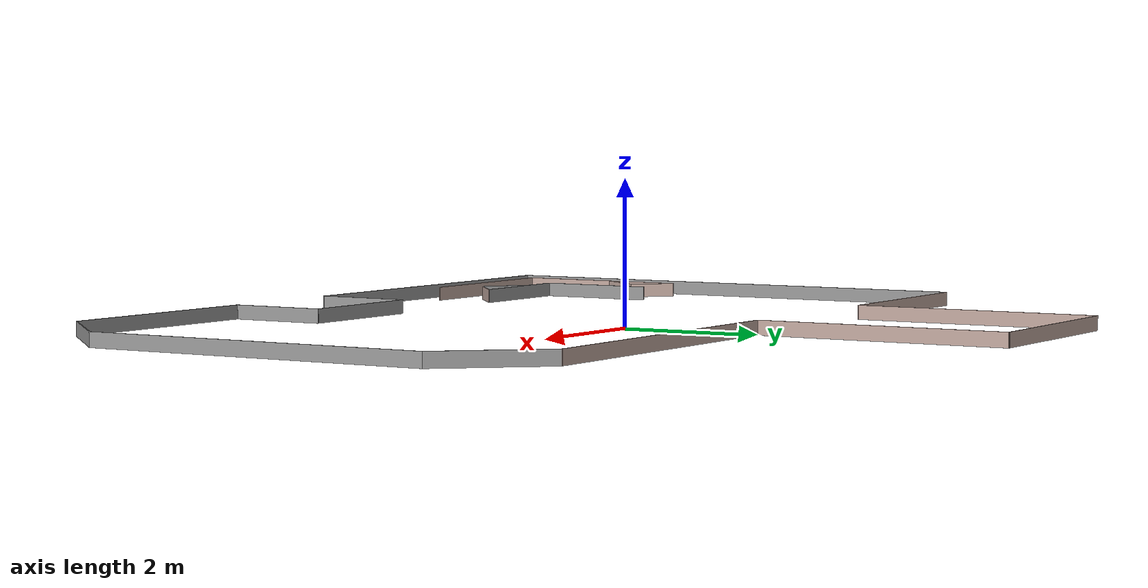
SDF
<?xml version='1.0'?>
<sdf version='1.7'>
  <model name='MR_wall'>
    <pose>-0.048968 0.048968 0 0 -0 0</pose>
    <link name='Wall_0'>
      <collision name='Wall_0_Collision'>
        <geometry>
          <box>
            <size>4.81 0.01 0.2</size>
          </box>
        </geometry>
        <pose>0 0 0.1 0 -0 0</pose>
      </collision>
      <visual name='Wall_0_Visual'>
        <pose>0 0 0.1 0 -0 0</pose>
        <geometry>
          <box>
            <size>4.81 0.01 0.2</size>
          </box>
        </geometry>
        <material>
          <script>
            <uri>file://media/materials/scripts/gazebo.material</uri>
            <name>Gazebo/Grey</name>
          </script>
          <ambient>0.760784 0.662745 0.627451 1</ambient>
        </material>
        <meta>
          <layer>0</layer>
        </meta>
      </visual>
      <pose>2.44897 1.95103 0 0 -0 0</pose>
    </link>
    <link name='Wall_10'>
      <collision name='Wall_10_Collision'>
        <geometry>
          <box>
            <size>7.41 0.01 0.2</size>
          </box>
        </geometry>
        <pose>0 0 0.1 0 -0 0</pose>
      </collision>
      <visual name='Wall_10_Visual'>
        <pose>0 0 0.1 0 -0 0</pose>
        <geometry>
          <box>
            <size>7.41 0.01 0.2</size>
          </box>
        </geometry>
        <material>
          <script>
            <uri>file://media/materials/scripts/gazebo.material</uri>
            <name>Gazebo/Grey</name>
          </script>
          <ambient>1 1 1 1</ambient>
        </material>
        <meta>
          <layer>0</layer>
        </meta>
      </visual>
      <pose>-5.95103 -1.74897 0 0 -0 -1.5708</pose>
    </link>
    <link name='Wall_12'>
      <collision name='Wall_12_Collision'>
        <geometry>
          <box>
            <size>5.51 0.01 0.2</size>
          </box>
        </geometry>
        <pose>0 0 0.1 0 -0 0</pose>
      </collision>
      <visual name='Wall_12_Visual'>
        <pose>0 0 0.1 0 -0 0</pose>
        <geometry>
          <box>
            <size>5.51 0.01 0.2</size>
          </box>
        </geometry>
        <material>
          <script>
            <uri>file://media/materials/scripts/gazebo.material</uri>
            <name>Gazebo/Grey</name>
          </script>
          <ambient>1 1 1 1</ambient>
        </material>
        <meta>
          <layer>0</layer>
        </meta>
      </visual>
      <pose>-3.20103 -5.44897 0 0 -0 0</pose>
    </link>
    <link name='Wall_13'>
      <collision name='Wall_13_Collision'>
        <geometry>
          <box>
            <size>1.41 0.01 0.2</size>
          </box>
        </geometry>
        <pose>0 0 0.1 0 -0 0</pose>
      </collision>
      <visual name='Wall_13_Visual'>
        <pose>0 0 0.1 0 -0 0</pose>
        <geometry>
          <box>
            <size>1.41 0.01 0.2</size>
          </box>
        </geometry>
        <material>
          <script>
            <uri>file://media/materials/scripts/gazebo.material</uri>
            <name>Gazebo/Grey</name>
          </script>
          <ambient>1 1 1 1</ambient>
        </material>
        <meta>
          <layer>0</layer>
        </meta>
      </visual>
      <pose>-0.451032 -4.74897 0 0 -0 1.5708</pose>
    </link>
    <link name='Wall_14'>
      <collision name='Wall_14_Collision'>
        <geometry>
          <box>
            <size>2.01 0.01 0.2</size>
          </box>
        </geometry>
        <pose>0 0 0.1 0 -0 0</pose>
      </collision>
      <visual name='Wall_14_Visual'>
        <pose>0 0 0.1 0 -0 0</pose>
        <geometry>
          <box>
            <size>2.01 0.01 0.2</size>
          </box>
        </geometry>
        <material>
          <script>
            <uri>file://media/materials/scripts/gazebo.material</uri>
            <name>Gazebo/Grey</name>
          </script>
          <ambient>1 1 1 1</ambient>
        </material>
        <meta>
          <layer>0</layer>
        </meta>
      </visual>
      <pose>0.548968 -4.04897 0 0 -0 0</pose>
    </link>
    <link name='Wall_16'>
      <collision name='Wall_16_Collision'>
        <geometry>
          <box>
            <size>1.41 0.01 0.2</size>
          </box>
        </geometry>
        <pose>0 0 0.1 0 -0 0</pose>
      </collision>
      <visual name='Wall_16_Visual'>
        <pose>0 0 0.1 0 -0 0</pose>
        <geometry>
          <box>
            <size>1.41 0.01 0.2</size>
          </box>
        </geometry>
        <material>
          <script>
            <uri>file://media/materials/scripts/gazebo.material</uri>
            <name>Gazebo/Grey</name>
          </script>
          <ambient>1 1 1 1</ambient>
        </material>
        <meta>
          <layer>0</layer>
        </meta>
      </visual>
      <pose>1.54897 -4.74897 0 0 -0 -1.5708</pose>
    </link>
    <link name='Wall_18'>
      <collision name='Wall_18_Collision'>
        <geometry>
          <box>
            <size>3.31 0.01 0.2</size>
          </box>
        </geometry>
        <pose>0 0 0.1 0 -0 0</pose>
      </collision>
      <visual name='Wall_18_Visual'>
        <pose>0 0 0.1 0 -0 0</pose>
        <geometry>
          <box>
            <size>3.31 0.01 0.2</size>
          </box>
        </geometry>
        <material>
          <script>
            <uri>file://media/materials/scripts/gazebo.material</uri>
            <name>Gazebo/Grey</name>
          </script>
          <ambient>1 1 1 1</ambient>
        </material>
        <meta>
          <layer>0</layer>
        </meta>
      </visual>
      <pose>3.19897 -5.44897 0 0 -0 0</pose>
    </link>
    <link name='Wall_2'>
      <collision name='Wall_2_Collision'>
        <geometry>
          <box>
            <size>3.51 0.01 0.2</size>
          </box>
        </geometry>
        <pose>0 0 0.1 0 -0 0</pose>
      </collision>
      <visual name='Wall_2_Visual'>
        <pose>0 0 0.1 0 -0 0</pose>
        <geometry>
          <box>
            <size>3.51 0.01 0.2</size>
          </box>
        </geometry>
        <material>
          <script>
            <uri>file://media/materials/scripts/gazebo.material</uri>
            <name>Gazebo/Grey</name>
          </script>
          <ambient>0.760784 0.662745 0.627451 1</ambient>
        </material>
        <meta>
          <layer>0</layer>
        </meta>
      </visual>
      <pose>0.048968 3.70103 0 0 -0 1.5708</pose>
    </link>
    <link name='Wall_23'>
      <collision name='Wall_23_Collision'>
        <geometry>
          <box>
            <size>1.63788 0.01 0.2</size>
          </box>
        </geometry>
        <pose>0 0 0.1 0 -0 0</pose>
      </collision>
      <visual name='Wall_23_Visual'>
        <pose>0 0 0.1 0 -0 0</pose>
        <geometry>
          <box>
            <size>1.63788 0.01 0.2</size>
          </box>
        </geometry>
        <material>
          <script>
            <uri>file://media/materials/scripts/gazebo.material</uri>
            <name>Gazebo/Grey</name>
          </script>
          <ambient>1 1 1 1</ambient>
        </material>
        <meta>
          <layer>0</layer>
        </meta>
      </visual>
      <pose>5.39897 1.35103 0 0 -0 -0.828849</pose>
    </link>
    <link name='Wall_25'>
      <collision name='Wall_25_Collision'>
        <geometry>
          <box>
            <size>1.63788 0.01 0.2</size>
          </box>
        </geometry>
        <pose>0 0 0.1 0 -0 0</pose>
      </collision>
      <visual name='Wall_25_Visual'>
        <pose>0 0 0.1 0 -0 0</pose>
        <geometry>
          <box>
            <size>1.63788 0.01 0.2</size>
          </box>
        </geometry>
        <material>
          <script>
            <uri>file://media/materials/scripts/gazebo.material</uri>
            <name>Gazebo/Grey</name>
          </script>
          <ambient>1 1 1 1</ambient>
        </material>
        <meta>
          <layer>0</layer>
        </meta>
      </visual>
      <pose>5.39897 -4.84897 0 0 -0 0.828849</pose>
    </link>
    <link name='Wall_27'>
      <collision name='Wall_27_Collision'>
        <geometry>
          <box>
            <size>5.01 0.01 0.2</size>
          </box>
        </geometry>
        <pose>0 0 0.1 0 -0 0</pose>
      </collision>
      <visual name='Wall_27_Visual'>
        <pose>0 0 0.1 0 -0 0</pose>
        <geometry>
          <box>
            <size>5.01 0.01 0.2</size>
          </box>
        </geometry>
        <material>
          <script>
            <uri>file://media/materials/scripts/gazebo.material</uri>
            <name>Gazebo/Grey</name>
          </script>
          <ambient>1 1 1 1</ambient>
        </material>
        <meta>
          <layer>0</layer>
        </meta>
      </visual>
      <pose>5.94897 -1.74897 0 0 -0 -1.5708</pose>
    </link>
    <link name='Wall_29'>
      <collision name='Wall_29_Collision'>
        <geometry>
          <box>
            <size>1.71 0.01 0.2</size>
          </box>
        </geometry>
        <pose>0 0 0.1 0 -0 0</pose>
      </collision>
      <visual name='Wall_29_Visual'>
        <pose>0 0 0.1 0 -0 0</pose>
        <geometry>
          <box>
            <size>1.71 0.01 0.2</size>
          </box>
        </geometry>
        <material>
          <script>
            <uri>file://media/materials/scripts/gazebo.material</uri>
            <name>Gazebo/Grey</name>
          </script>
          <ambient>1 1 1 1</ambient>
        </material>
        <meta>
          <layer>0</layer>
        </meta>
      </visual>
      <pose>-4.55103 -3.29897 0 0 -0 -1.5708</pose>
    </link>
    <link name='Wall_31'>
      <collision name='Wall_31_Collision'>
        <geometry>
          <box>
            <size>1.71002 0.01 0.2</size>
          </box>
        </geometry>
        <pose>0 0 0.1 0 -0 0</pose>
      </collision>
      <visual name='Wall_31_Visual'>
        <pose>0 0 0.1 0 -0 0</pose>
        <geometry>
          <box>
            <size>1.71002 0.01 0.2</size>
          </box>
        </geometry>
        <material>
          <script>
            <uri>file://media/materials/scripts/gazebo.material</uri>
            <name>Gazebo/Grey</name>
          </script>
          <ambient>1 1 1 1</ambient>
        </material>
        <meta>
          <layer>0</layer>
        </meta>
      </visual>
      <pose>-3.70103 -4.14897 0 0 -0 0</pose>
    </link>
    <link name='Wall_33'>
      <collision name='Wall_33_Collision'>
        <geometry>
          <box>
            <size>2.61 0.01 0.2</size>
          </box>
        </geometry>
        <pose>0 0 0.1 0 -0 0</pose>
      </collision>
      <visual name='Wall_33_Visual'>
        <pose>0 0 0.1 0 -0 0</pose>
        <geometry>
          <box>
            <size>2.61 0.01 0.2</size>
          </box>
        </geometry>
        <material>
          <script>
            <uri>file://media/materials/scripts/gazebo.material</uri>
            <name>Gazebo/Grey</name>
          </script>
          <ambient>0.760784 0.662745 0.627451 1</ambient>
        </material>
        <meta>
          <layer>0</layer>
        </meta>
      </visual>
      <pose>-5.47103 -3.74897 0 0 -0 -1.5708</pose>
    </link>
    <link name='Wall_35'>
      <collision name='Wall_35_Collision'>
        <geometry>
          <box>
            <size>2.63 0.01 0.2</size>
          </box>
        </geometry>
        <pose>0 0 0.1 0 -0 0</pose>
      </collision>
      <visual name='Wall_35_Visual'>
        <pose>0 0 0.1 0 -0 0</pose>
        <geometry>
          <box>
            <size>2.63 0.01 0.2</size>
          </box>
        </geometry>
        <material>
          <script>
            <uri>file://media/materials/scripts/gazebo.material</uri>
            <name>Gazebo/Grey</name>
          </script>
          <ambient>0.760784 0.662745 0.627451 1</ambient>
        </material>
        <meta>
          <layer>0</layer>
        </meta>
      </visual>
      <pose>-4.16103 -5.04897 0 0 -0 3.14159</pose>
    </link>
    <link name='Wall_37'>
      <collision name='Wall_37_Collision'>
        <geometry>
          <box>
            <size>0.682681 0.01 0.2</size>
          </box>
        </geometry>
        <pose>0 0 0.1 0 -0 0</pose>
      </collision>
      <visual name='Wall_37_Visual'>
        <pose>0 0 0.1 0 -0 0</pose>
        <geometry>
          <box>
            <size>0.682681 0.01 0.2</size>
          </box>
        </geometry>
        <material>
          <script>
            <uri>file://media/materials/scripts/gazebo.material</uri>
            <name>Gazebo/Grey</name>
          </script>
          <ambient>0.760784 0.662745 0.627451 1</ambient>
        </material>
        <meta>
          <layer>0</layer>
        </meta>
      </visual>
      <pose>-3.10103 -4.37397 0 0 -0 -2.40878</pose>
    </link>
    <link name='Wall_38'>
      <collision name='Wall_38_Collision'>
        <geometry>
          <box>
            <size>0.809375 0.01 0.2</size>
          </box>
        </geometry>
        <pose>0 0 0.1 0 -0 0</pose>
      </collision>
      <visual name='Wall_38_Visual'>
        <pose>0 0 0.1 0 -0 0</pose>
        <geometry>
          <box>
            <size>0.809375 0.01 0.2</size>
          </box>
        </geometry>
        <material>
          <script>
            <uri>file://media/materials/scripts/gazebo.material</uri>
            <name>Gazebo/Grey</name>
          </script>
          <ambient>1 1 1 1</ambient>
        </material>
        <meta>
          <layer>0</layer>
        </meta>
      </visual>
      <pose>-3.68103 -4.37347 0 0 -0 2.54214</pose>
    </link>
    <link name='Wall_4'>
      <collision name='Wall_4_Collision'>
        <geometry>
          <box>
            <size>3.01 0.01 0.2</size>
          </box>
        </geometry>
        <pose>0 0 0.1 0 -0 0</pose>
      </collision>
      <visual name='Wall_4_Visual'>
        <pose>0 0 0.1 0 -0 0</pose>
        <geometry>
          <box>
            <size>3.01 0.01 0.2</size>
          </box>
        </geometry>
        <material>
          <script>
            <uri>file://media/materials/scripts/gazebo.material</uri>
            <name>Gazebo/Grey</name>
          </script>
          <ambient>0.760784 0.662745 0.627451 1</ambient>
        </material>
        <meta>
          <layer>0</layer>
        </meta>
      </visual>
      <pose>-1.45103 5.45103 0 0 -0 3.14159</pose>
    </link>
    <link name='Wall_40'>
      <collision name='Wall_40_Collision'>
        <geometry>
          <box>
            <size>0.678174 0.01 0.2</size>
          </box>
        </geometry>
        <pose>0 0 0.1 0 -0 0</pose>
      </collision>
      <visual name='Wall_40_Visual'>
        <pose>0 0 0.1 0 -0 0</pose>
        <geometry>
          <box>
            <size>0.678174 0.01 0.2</size>
          </box>
        </geometry>
        <material>
          <script>
            <uri>file://media/materials/scripts/gazebo.material</uri>
            <name>Gazebo/Grey</name>
          </script>
          <ambient>0.760784 0.662745 0.627451 1</ambient>
        </material>
        <meta>
          <layer>0</layer>
        </meta>
      </visual>
      <pose>-5.24603 -2.69593 0 0 -0 -0.831893</pose>
    </link>
    <link name='Wall_41'>
      <collision name='Wall_41_Collision'>
        <geometry>
          <box>
            <size>0.809375 0.01 0.2</size>
          </box>
        </geometry>
        <pose>0 0 0.1 0 -0 0</pose>
      </collision>
      <visual name='Wall_41_Visual'>
        <pose>0 0 0.1 0 -0 0</pose>
        <geometry>
          <box>
            <size>0.809375 0.01 0.2</size>
          </box>
        </geometry>
        <material>
          <script>
            <uri>file://media/materials/scripts/gazebo.material</uri>
            <name>Gazebo/Grey</name>
          </script>
          <ambient>0.760784 0.662745 0.627451 1</ambient>
        </material>
        <meta>
          <layer>0</layer>
        </meta>
      </visual>
      <pose>-5.24653 -3.27593 0 0 -0 -2.17025</pose>
    </link>
    <link name='Wall_6'>
      <collision name='Wall_6_Collision'>
        <geometry>
          <box>
            <size>3.51 0.01 0.2</size>
          </box>
        </geometry>
        <pose>0 0 0.1 0 -0 0</pose>
      </collision>
      <visual name='Wall_6_Visual'>
        <pose>0 0 0.1 0 -0 0</pose>
        <geometry>
          <box>
            <size>3.51 0.01 0.2</size>
          </box>
        </geometry>
        <material>
          <script>
            <uri>file://media/materials/scripts/gazebo.material</uri>
            <name>Gazebo/Grey</name>
          </script>
          <ambient>0.760784 0.662745 0.627451 1</ambient>
        </material>
        <meta>
          <layer>0</layer>
        </meta>
      </visual>
      <pose>-2.95103 3.70103 0 0 -0 -1.5708</pose>
    </link>
    <link name='Wall_8'>
      <collision name='Wall_8_Collision'>
        <geometry>
          <box>
            <size>3.01 0.01 0.2</size>
          </box>
        </geometry>
        <pose>0 0 0.1 0 -0 0</pose>
      </collision>
      <visual name='Wall_8_Visual'>
        <pose>0 0 0.1 0 -0 0</pose>
        <geometry>
          <box>
            <size>3.01 0.01 0.2</size>
          </box>
        </geometry>
        <material>
          <script>
            <uri>file://media/materials/scripts/gazebo.material</uri>
            <name>Gazebo/Grey</name>
          </script>
          <ambient>0.760784 0.662745 0.627451 1</ambient>
        </material>
        <meta>
          <layer>0</layer>
        </meta>
      </visual>
      <pose>-4.45103 1.95103 0 0 -0 3.14159</pose>
    </link>
    <static>1</static>
  </model>
</sdf>
